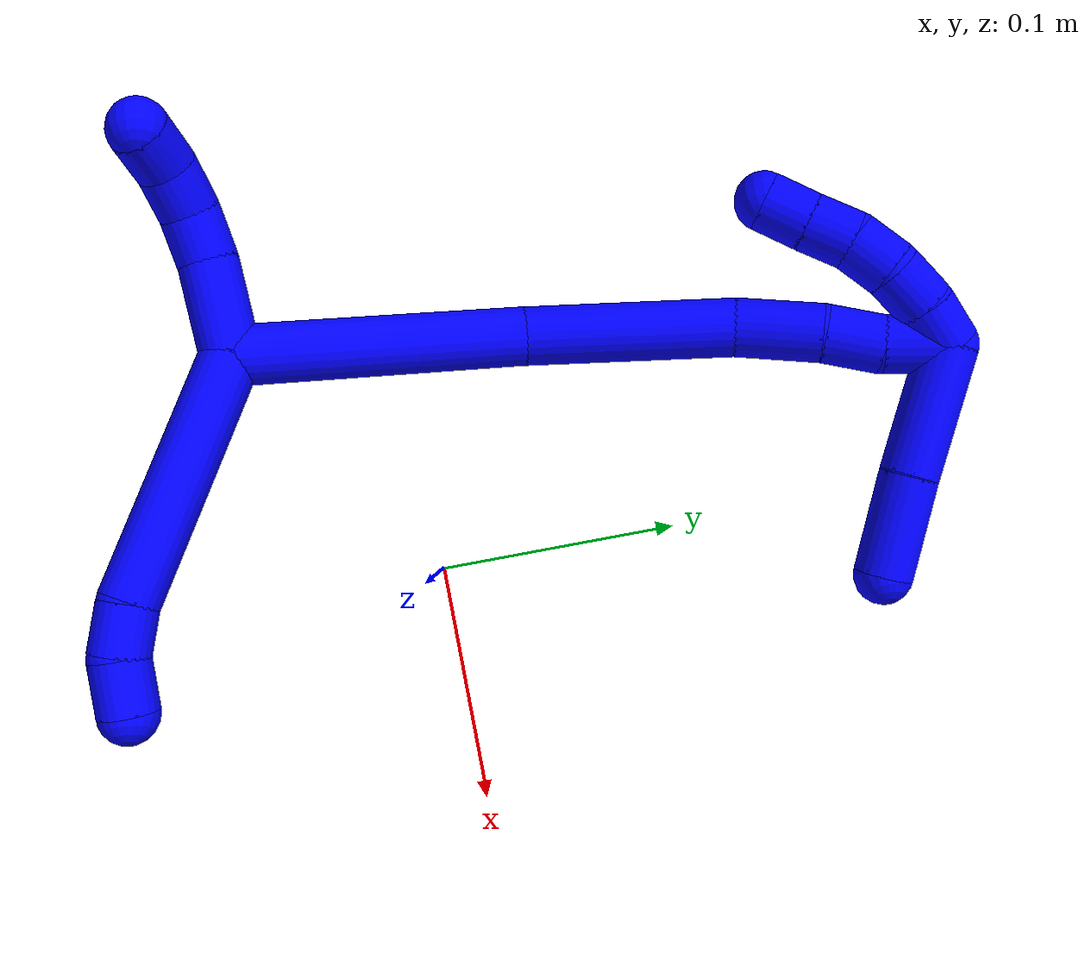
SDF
<sdf version="1.7">
 <world name="default">
  <model name="1">
   <static>0</static>
   <link name="1">
    <collision name="collision-cylinder-e_1_2_8">
     <pose>0.005854 -0.024749 0.046782 0.486591 0.110167 0.027371</pose>
     <geometry><cylinder><radius>0.0125</radius><length>0.106496</length></cylinder></geometry>
     <surface>
      <friction><ode><mu>1.16</mu><mu2>1.16</mu2><slip1>0</slip1><slip2>0</slip2></ode></friction>
      <contact><ode><kp>1e+06</kp><kd>1</kd><max_vel>0</max_vel><min_depth>0.001</min_depth></ode></contact>
     </surface>
    </collision>
    <visual name="visual-cylinder-e_1_2_8">
     <pose>0.005854 -0.024749 0.046782 0.486591 0.110167 0.027371</pose>
     <geometry><cylinder><radius>0.0125</radius><length>0.106496</length></cylinder></geometry>
     <material><ambient>0 0 1 1</ambient></material>
    </visual>
    <collision name="collision-cylinder-e_2_8_9">
     <pose>0.014379 -0.052658 0.103338 0.312809 0.254316 0.040316</pose>
     <geometry><cylinder><radius>0.0125</radius><length>0.021227</length></cylinder></geometry>
     <surface>
      <friction><ode><mu>1.16</mu><mu2>1.16</mu2><slip1>0</slip1><slip2>0</slip2></ode></friction>
      <contact><ode><kp>1e+06</kp><kd>1</kd><max_vel>0</max_vel><min_depth>0.001</min_depth></ode></contact>
     </surface>
    </collision>
    <visual name="visual-cylinder-e_2_8_9">
     <pose>0.014379 -0.052658 0.103338 0.312809 0.254316 0.040316</pose>
     <geometry><cylinder><radius>0.0125</radius><length>0.021227</length></cylinder></geometry>
     <material><ambient>0 0 1 1</ambient></material>
    </visual>
    <collision name="collision-cylinder-e_3_9_6">
     <pose>0.021757 -0.055951 0.123206 0.013086 0.436407 0.002902</pose>
     <geometry><cylinder><radius>0.0125</radius><length>0.022277</length></cylinder></geometry>
     <surface>
      <friction><ode><mu>1.16</mu><mu2>1.16</mu2><slip1>0</slip1><slip2>0</slip2></ode></friction>
      <contact><ode><kp>1e+06</kp><kd>1</kd><max_vel>0</max_vel><min_depth>0.001</min_depth></ode></contact>
     </surface>
    </collision>
    <visual name="visual-cylinder-e_3_9_6">
     <pose>0.021757 -0.055951 0.123206 0.013086 0.436407 0.002902</pose>
     <geometry><cylinder><radius>0.0125</radius><length>0.022277</length></cylinder></geometry>
     <material><ambient>0 0 1 1</ambient></material>
    </visual>
    <collision name="collision-cylinder-e_1_2_10">
     <pose>-0.007112 -0.001435 -0.018073 3.06234 -0.373864 -2.72834</pose>
     <geometry><cylinder><radius>0.0125</radius><length>0.03895</length></cylinder></geometry>
     <surface>
      <friction><ode><mu>1.16</mu><mu2>1.16</mu2><slip1>0</slip1><slip2>0</slip2></ode></friction>
      <contact><ode><kp>1e+06</kp><kd>1</kd><max_vel>0</max_vel><min_depth>0.001</min_depth></ode></contact>
     </surface>
    </collision>
    <visual name="visual-cylinder-e_1_2_10">
     <pose>-0.007112 -0.001435 -0.018073 3.06234 -0.373864 -2.72834</pose>
     <geometry><cylinder><radius>0.0125</radius><length>0.03895</length></cylinder></geometry>
     <material><ambient>0 0 1 1</ambient></material>
    </visual>
    <collision name="collision-cylinder-e_2_10_11">
     <pose>-0.020234 -0.004262 -0.044583 2.97813 -0.612555 -2.63468</pose>
     <geometry><cylinder><radius>0.0125</radius><length>0.020904</length></cylinder></geometry>
     <surface>
      <friction><ode><mu>1.16</mu><mu2>1.16</mu2><slip1>0</slip1><slip2>0</slip2></ode></friction>
      <contact><ode><kp>1e+06</kp><kd>1</kd><max_vel>0</max_vel><min_depth>0.001</min_depth></ode></contact>
     </surface>
    </collision>
    <visual name="visual-cylinder-e_2_10_11">
     <pose>-0.020234 -0.004262 -0.044583 2.97813 -0.612555 -2.63468</pose>
     <geometry><cylinder><radius>0.0125</radius><length>0.020904</length></cylinder></geometry>
     <material><ambient>0 0 1 1</ambient></material>
    </visual>
    <collision name="collision-cylinder-e_3_11_12">
     <pose>-0.03444 -0.007175 -0.058647 2.87759 -0.952686 -2.63786</pose>
     <geometry><cylinder><radius>0.0125</radius><length>0.020115</length></cylinder></geometry>
     <surface>
      <friction><ode><mu>1.16</mu><mu2>1.16</mu2><slip1>0</slip1><slip2>0</slip2></ode></friction>
      <contact><ode><kp>1e+06</kp><kd>1</kd><max_vel>0</max_vel><min_depth>0.001</min_depth></ode></contact>
     </surface>
    </collision>
    <visual name="visual-cylinder-e_3_11_12">
     <pose>-0.03444 -0.007175 -0.058647 2.87759 -0.952686 -2.63786</pose>
     <geometry><cylinder><radius>0.0125</radius><length>0.020115</length></cylinder></geometry>
     <material><ambient>0 0 1 1</ambient></material>
    </visual>
    <collision name="collision-cylinder-e_4_12_5">
     <pose>-0.05216 -0.010342 -0.066902 2.58211 -1.25591 -2.388</pose>
     <geometry><cylinder><radius>0.0125</radius><length>0.020031</length></cylinder></geometry>
     <surface>
      <friction><ode><mu>1.16</mu><mu2>1.16</mu2><slip1>0</slip1><slip2>0</slip2></ode></friction>
      <contact><ode><kp>1e+06</kp><kd>1</kd><max_vel>0</max_vel><min_depth>0.001</min_depth></ode></contact>
     </surface>
    </collision>
    <visual name="visual-cylinder-e_4_12_5">
     <pose>-0.05216 -0.010342 -0.066902 2.58211 -1.25591 -2.388</pose>
     <geometry><cylinder><radius>0.0125</radius><length>0.020031</length></cylinder></geometry>
     <material><ambient>0 0 1 1</ambient></material>
    </visual>
    <collision name="collision-cylinder-e_1_2_13">
     <pose>0.019907 0.057557 -0.003417 -1.6301 0.332443 -0.352361</pose>
     <geometry><cylinder><radius>0.0125</radius><length>0.121997</length></cylinder></geometry>
     <surface>
      <friction><ode><mu>1.16</mu><mu2>1.16</mu2><slip1>0</slip1><slip2>0</slip2></ode></friction>
      <contact><ode><kp>1e+06</kp><kd>1</kd><max_vel>0</max_vel><min_depth>0.001</min_depth></ode></contact>
     </surface>
    </collision>
    <visual name="visual-cylinder-e_1_2_13">
     <pose>0.019907 0.057557 -0.003417 -1.6301 0.332443 -0.352361</pose>
     <geometry><cylinder><radius>0.0125</radius><length>0.121997</length></cylinder></geometry>
     <material><ambient>0 0 1 1</ambient></material>
    </visual>
    <collision name="collision-cylinder-e_2_13_14">
     <pose>0.045218 0.159178 -0.003071 -1.48558 0.121594 -0.111672</pose>
     <geometry><cylinder><radius>0.0125</radius><length>0.089106</length></cylinder></geometry>
     <surface>
      <friction><ode><mu>1.16</mu><mu2>1.16</mu2><slip1>0</slip1><slip2>0</slip2></ode></friction>
      <contact><ode><kp>1e+06</kp><kd>1</kd><max_vel>0</max_vel><min_depth>0.001</min_depth></ode></contact>
     </surface>
    </collision>
    <visual name="visual-cylinder-e_2_13_14">
     <pose>0.045218 0.159178 -0.003071 -1.48558 0.121594 -0.111672</pose>
     <geometry><cylinder><radius>0.0125</radius><length>0.089106</length></cylinder></geometry>
     <material><ambient>0 0 1 1</ambient></material>
    </visual>
    <collision name="collision-cylinder-e_3_14_15">
     <pose>0.050797 0.221143 0.005558 -1.30544 0.009414 -0.007197</pose>
     <geometry><cylinder><radius>0.0125</radius><length>0.037103</length></cylinder></geometry>
     <surface>
      <friction><ode><mu>1.16</mu><mu2>1.16</mu2><slip1>0</slip1><slip2>0</slip2></ode></friction>
      <contact><ode><kp>1e+06</kp><kd>1</kd><max_vel>0</max_vel><min_depth>0.001</min_depth></ode></contact>
     </surface>
    </collision>
    <visual name="visual-cylinder-e_3_14_15">
     <pose>0.050797 0.221143 0.005558 -1.30544 0.009414 -0.007197</pose>
     <geometry><cylinder><radius>0.0125</radius><length>0.037103</length></cylinder></geometry>
     <material><ambient>0 0 1 1</ambient></material>
    </visual>
    <collision name="collision-cylinder-e_4_15_16">
     <pose>0.052923 0.250616 0.014338 -1.24454 0.158417 -0.113754</pose>
     <geometry><cylinder><radius>0.0125</radius><length>0.024742</length></cylinder></geometry>
     <surface>
      <friction><ode><mu>1.16</mu><mu2>1.16</mu2><slip1>0</slip1><slip2>0</slip2></ode></friction>
      <contact><ode><kp>1e+06</kp><kd>1</kd><max_vel>0</max_vel><min_depth>0.001</min_depth></ode></contact>
     </surface>
    </collision>
    <visual name="visual-cylinder-e_4_15_16">
     <pose>0.052923 0.250616 0.014338 -1.24454 0.158417 -0.113754</pose>
     <geometry><cylinder><radius>0.0125</radius><length>0.024742</length></cylinder></geometry>
     <material><ambient>0 0 1 1</ambient></material>
    </visual>
    <collision name="collision-cylinder-e_5_16_1">
     <pose>0.055643 0.275503 0.020504 -1.40334 0.056801 -0.048008</pose>
     <geometry><cylinder><radius>0.0125</radius><length>0.027052</length></cylinder></geometry>
     <surface>
      <friction><ode><mu>1.16</mu><mu2>1.16</mu2><slip1>0</slip1><slip2>0</slip2></ode></friction>
      <contact><ode><kp>1e+06</kp><kd>1</kd><max_vel>0</max_vel><min_depth>0.001</min_depth></ode></contact>
     </surface>
    </collision>
    <visual name="visual-cylinder-e_5_16_1">
     <pose>0.055643 0.275503 0.020504 -1.40334 0.056801 -0.048008</pose>
     <geometry><cylinder><radius>0.0125</radius><length>0.027052</length></cylinder></geometry>
     <material><ambient>0 0 1 1</ambient></material>
    </visual>
    <collision name="collision-cylinder-e_1_1_17">
     <pose>0.066678 0.276629 0.046121 0.480833 0.371485 0.09207</pose>
     <geometry><cylinder><radius>0.0125</radius><length>0.056568</length></cylinder></geometry>
     <surface>
      <friction><ode><mu>1.16</mu><mu2>1.16</mu2><slip1>0</slip1><slip2>0</slip2></ode></friction>
      <contact><ode><kp>1e+06</kp><kd>1</kd><max_vel>0</max_vel><min_depth>0.001</min_depth></ode></contact>
     </surface>
    </collision>
    <visual name="visual-cylinder-e_1_1_17">
     <pose>0.066678 0.276629 0.046121 0.480833 0.371485 0.09207</pose>
     <geometry><cylinder><radius>0.0125</radius><length>0.056568</length></cylinder></geometry>
     <material><ambient>0 0 1 1</ambient></material>
    </visual>
    <collision name="collision-cylinder-e_2_17_4">
     <pose>0.085907 0.255994 0.087375 0.441129 0.425408 0.096771</pose>
     <geometry><cylinder><radius>0.0125</radius><length>0.043432</length></cylinder></geometry>
     <surface>
      <friction><ode><mu>1.16</mu><mu2>1.16</mu2><slip1>0</slip1><slip2>0</slip2></ode></friction>
      <contact><ode><kp>1e+06</kp><kd>1</kd><max_vel>0</max_vel><min_depth>0.001</min_depth></ode></contact>
     </surface>
    </collision>
    <visual name="visual-cylinder-e_2_17_4">
     <pose>0.085907 0.255994 0.087375 0.441129 0.425408 0.096771</pose>
     <geometry><cylinder><radius>0.0125</radius><length>0.043432</length></cylinder></geometry>
     <material><ambient>0 0 1 1</ambient></material>
    </visual>
    <collision name="collision-cylinder-e_1_1_18">
     <pose>0.050644 0.284771 0.015658 2.62336 -0.614612 -1.74984</pose>
     <geometry><cylinder><radius>0.0125</radius><length>0.02</length></cylinder></geometry>
     <surface>
      <friction><ode><mu>1.16</mu><mu2>1.16</mu2><slip1>0</slip1><slip2>0</slip2></ode></friction>
      <contact><ode><kp>1e+06</kp><kd>1</kd><max_vel>0</max_vel><min_depth>0.001</min_depth></ode></contact>
     </surface>
    </collision>
    <visual name="visual-cylinder-e_1_1_18">
     <pose>0.050644 0.284771 0.015658 2.62336 -0.614612 -1.74984</pose>
     <geometry><cylinder><radius>0.0125</radius><length>0.02</length></cylinder></geometry>
     <material><ambient>0 0 1 1</ambient></material>
    </visual>
    <collision name="collision-cylinder-e_2_18_19">
     <pose>0.039955 0.27512 0.001901 2.4421 -0.514738 -1.25019</pose>
     <geometry><cylinder><radius>0.0125</radius><length>0.02</length></cylinder></geometry>
     <surface>
      <friction><ode><mu>1.16</mu><mu2>1.16</mu2><slip1>0</slip1><slip2>0</slip2></ode></friction>
      <contact><ode><kp>1e+06</kp><kd>1</kd><max_vel>0</max_vel><min_depth>0.001</min_depth></ode></contact>
     </surface>
    </collision>
    <visual name="visual-cylinder-e_2_18_19">
     <pose>0.039955 0.27512 0.001901 2.4421 -0.514738 -1.25019</pose>
     <geometry><cylinder><radius>0.0125</radius><length>0.02</length></cylinder></geometry>
     <material><ambient>0 0 1 1</ambient></material>
    </visual>
    <collision name="collision-cylinder-e_3_19_20">
     <pose>0.032509 0.26271 -0.011637 2.36138 -0.255002 -0.604455</pose>
     <geometry><cylinder><radius>0.0125</radius><length>0.02</length></cylinder></geometry>
     <surface>
      <friction><ode><mu>1.16</mu><mu2>1.16</mu2><slip1>0</slip1><slip2>0</slip2></ode></friction>
      <contact><ode><kp>1e+06</kp><kd>1</kd><max_vel>0</max_vel><min_depth>0.001</min_depth></ode></contact>
     </surface>
    </collision>
    <visual name="visual-cylinder-e_3_19_20">
     <pose>0.032509 0.26271 -0.011637 2.36138 -0.255002 -0.604455</pose>
     <geometry><cylinder><radius>0.0125</radius><length>0.02</length></cylinder></geometry>
     <material><ambient>0 0 1 1</ambient></material>
    </visual>
    <collision name="collision-cylinder-e_4_20_21">
     <pose>0.028012 0.247563 -0.023668 2.12422 -0.19872 -0.3538</pose>
     <geometry><cylinder><radius>0.0125</radius><length>0.02</length></cylinder></geometry>
     <surface>
      <friction><ode><mu>1.16</mu><mu2>1.16</mu2><slip1>0</slip1><slip2>0</slip2></ode></friction>
      <contact><ode><kp>1e+06</kp><kd>1</kd><max_vel>0</max_vel><min_depth>0.001</min_depth></ode></contact>
     </surface>
    </collision>
    <visual name="visual-cylinder-e_4_20_21">
     <pose>0.028012 0.247563 -0.023668 2.12422 -0.19872 -0.3538</pose>
     <geometry><cylinder><radius>0.0125</radius><length>0.02</length></cylinder></geometry>
     <material><ambient>0 0 1 1</ambient></material>
    </visual>
    <collision name="collision-cylinder-e_5_21_3">
     <pose>0.023746 0.23108 -0.034152 2.15051 -0.231322 -0.423432</pose>
     <geometry><cylinder><radius>0.0125</radius><length>0.02</length></cylinder></geometry>
     <surface>
      <friction><ode><mu>1.16</mu><mu2>1.16</mu2><slip1>0</slip1><slip2>0</slip2></ode></friction>
      <contact><ode><kp>1e+06</kp><kd>1</kd><max_vel>0</max_vel><min_depth>0.001</min_depth></ode></contact>
     </surface>
    </collision>
    <visual name="visual-cylinder-e_5_21_3">
     <pose>0.023746 0.23108 -0.034152 2.15051 -0.231322 -0.423432</pose>
     <geometry><cylinder><radius>0.0125</radius><length>0.02</length></cylinder></geometry>
     <material><ambient>0 0 1 1</ambient></material>
    </visual>
    <collision name="collision-sphere-3">
     <pose>0.021453 0.222936 -0.039484 0 -0 0</pose>
     <geometry><sphere><radius>0.0125</radius></sphere></geometry>
     <surface>
      <friction><ode><mu>1.16</mu><mu2>1.16</mu2><slip1>0</slip1><slip2>0</slip2></ode></friction>
      <contact><ode><kp>1e+06</kp><kd>1</kd><max_vel>0</max_vel><min_depth>0.001</min_depth></ode></contact>
     </surface>
    </collision>
    <visual name="visual-sphere-3">
     <pose>0.021453 0.222936 -0.039484 0 -0 0</pose>
     <geometry><sphere><radius>0.0125</radius></sphere></geometry>
     <material><ambient>0 0 1 1</ambient></material>
    </visual>
    <collision name="collision-sphere-21">
     <pose>0.026038 0.239223 -0.02882 0 -0 0</pose>
     <geometry><sphere><radius>0.0125</radius></sphere></geometry>
     <surface>
      <friction><ode><mu>1.16</mu><mu2>1.16</mu2><slip1>0</slip1><slip2>0</slip2></ode></friction>
      <contact><ode><kp>1e+06</kp><kd>1</kd><max_vel>0</max_vel><min_depth>0.001</min_depth></ode></contact>
     </surface>
    </collision>
    <visual name="visual-sphere-21">
     <pose>0.026038 0.239223 -0.02882 0 -0 0</pose>
     <geometry><sphere><radius>0.0125</radius></sphere></geometry>
     <material><ambient>0 0 1 1</ambient></material>
    </visual>
    <collision name="collision-sphere-20">
     <pose>0.029987 0.255903 -0.018515 0 -0 0</pose>
     <geometry><sphere><radius>0.0125</radius></sphere></geometry>
     <surface>
      <friction><ode><mu>1.16</mu><mu2>1.16</mu2><slip1>0</slip1><slip2>0</slip2></ode></friction>
      <contact><ode><kp>1e+06</kp><kd>1</kd><max_vel>0</max_vel><min_depth>0.001</min_depth></ode></contact>
     </surface>
    </collision>
    <visual name="visual-sphere-20">
     <pose>0.029987 0.255903 -0.018515 0 -0 0</pose>
     <geometry><sphere><radius>0.0125</radius></sphere></geometry>
     <material><ambient>0 0 1 1</ambient></material>
    </visual>
    <collision name="collision-sphere-19">
     <pose>0.035032 0.269516 -0.00476 0 -0 0</pose>
     <geometry><sphere><radius>0.0125</radius></sphere></geometry>
     <surface>
      <friction><ode><mu>1.16</mu><mu2>1.16</mu2><slip1>0</slip1><slip2>0</slip2></ode></friction>
      <contact><ode><kp>1e+06</kp><kd>1</kd><max_vel>0</max_vel><min_depth>0.001</min_depth></ode></contact>
     </surface>
    </collision>
    <visual name="visual-sphere-19">
     <pose>0.035032 0.269516 -0.00476 0 -0 0</pose>
     <geometry><sphere><radius>0.0125</radius></sphere></geometry>
     <material><ambient>0 0 1 1</ambient></material>
    </visual>
    <collision name="collision-sphere-11">
     <pose>-0.026244 -0.005654 -0.05302 0 -0 0</pose>
     <geometry><sphere><radius>0.0125</radius></sphere></geometry>
     <surface>
      <friction><ode><mu>1.16</mu><mu2>1.16</mu2><slip1>0</slip1><slip2>0</slip2></ode></friction>
      <contact><ode><kp>1e+06</kp><kd>1</kd><max_vel>0</max_vel><min_depth>0.001</min_depth></ode></contact>
     </surface>
    </collision>
    <visual name="visual-sphere-11">
     <pose>-0.026244 -0.005654 -0.05302 0 -0 0</pose>
     <geometry><sphere><radius>0.0125</radius></sphere></geometry>
     <material><ambient>0 0 1 1</ambient></material>
    </visual>
    <collision name="collision-sphere-10">
     <pose>-0.014225 -0.002871 -0.036145 0 -0 0</pose>
     <geometry><sphere><radius>0.0125</radius></sphere></geometry>
     <surface>
      <friction><ode><mu>1.16</mu><mu2>1.16</mu2><slip1>0</slip1><slip2>0</slip2></ode></friction>
      <contact><ode><kp>1e+06</kp><kd>1</kd><max_vel>0</max_vel><min_depth>0.001</min_depth></ode></contact>
     </surface>
    </collision>
    <visual name="visual-sphere-10">
     <pose>-0.014225 -0.002871 -0.036145 0 -0 0</pose>
     <geometry><sphere><radius>0.0125</radius></sphere></geometry>
     <material><ambient>0 0 1 1</ambient></material>
    </visual>
    <collision name="collision-sphere-6">
     <pose>0.026465 -0.056084 0.133299 0 -0 0</pose>
     <geometry><sphere><radius>0.0125</radius></sphere></geometry>
     <surface>
      <friction><ode><mu>1.16</mu><mu2>1.16</mu2><slip1>0</slip1><slip2>0</slip2></ode></friction>
      <contact><ode><kp>1e+06</kp><kd>1</kd><max_vel>0</max_vel><min_depth>0.001</min_depth></ode></contact>
     </surface>
    </collision>
    <visual name="visual-sphere-6">
     <pose>0.026465 -0.056084 0.133299 0 -0 0</pose>
     <geometry><sphere><radius>0.0125</radius></sphere></geometry>
     <material><ambient>0 0 1 1</ambient></material>
    </visual>
    <collision name="collision-sphere-9">
     <pose>0.017049 -0.055819 0.113112 0 -0 0</pose>
     <geometry><sphere><radius>0.0125</radius></sphere></geometry>
     <surface>
      <friction><ode><mu>1.16</mu><mu2>1.16</mu2><slip1>0</slip1><slip2>0</slip2></ode></friction>
      <contact><ode><kp>1e+06</kp><kd>1</kd><max_vel>0</max_vel><min_depth>0.001</min_depth></ode></contact>
     </surface>
    </collision>
    <visual name="visual-sphere-9">
     <pose>0.017049 -0.055819 0.113112 0 -0 0</pose>
     <geometry><sphere><radius>0.0125</radius></sphere></geometry>
     <material><ambient>0 0 1 1</ambient></material>
    </visual>
    <collision name="collision-sphere-2">
     <geometry><sphere><radius>0.0125</radius></sphere></geometry>
     <surface>
      <friction><ode><mu>1.16</mu><mu2>1.16</mu2><slip1>0</slip1><slip2>0</slip2></ode></friction>
      <contact><ode><kp>1e+06</kp><kd>1</kd><max_vel>0</max_vel><min_depth>0.001</min_depth></ode></contact>
     </surface>
    </collision>
    <visual name="visual-sphere-2">
     <geometry><sphere><radius>0.0125</radius></sphere></geometry>
     <material><ambient>0 0 1 1</ambient></material>
    </visual>
    <collision name="collision-sphere-8">
     <pose>0.011709 -0.049497 0.093565 0 -0 0</pose>
     <geometry><sphere><radius>0.0125</radius></sphere></geometry>
     <surface>
      <friction><ode><mu>1.16</mu><mu2>1.16</mu2><slip1>0</slip1><slip2>0</slip2></ode></friction>
      <contact><ode><kp>1e+06</kp><kd>1</kd><max_vel>0</max_vel><min_depth>0.001</min_depth></ode></contact>
     </surface>
    </collision>
    <visual name="visual-sphere-8">
     <pose>0.011709 -0.049497 0.093565 0 -0 0</pose>
     <geometry><sphere><radius>0.0125</radius></sphere></geometry>
     <material><ambient>0 0 1 1</ambient></material>
    </visual>
    <collision name="collision-sphere-12">
     <pose>-0.042637 -0.008696 -0.064273 0 -0 0</pose>
     <geometry><sphere><radius>0.0125</radius></sphere></geometry>
     <surface>
      <friction><ode><mu>1.16</mu><mu2>1.16</mu2><slip1>0</slip1><slip2>0</slip2></ode></friction>
      <contact><ode><kp>1e+06</kp><kd>1</kd><max_vel>0</max_vel><min_depth>0.001</min_depth></ode></contact>
     </surface>
    </collision>
    <visual name="visual-sphere-12">
     <pose>-0.042637 -0.008696 -0.064273 0 -0 0</pose>
     <geometry><sphere><radius>0.0125</radius></sphere></geometry>
     <material><ambient>0 0 1 1</ambient></material>
    </visual>
    <collision name="collision-sphere-5">
     <pose>-0.061684 -0.011988 -0.069531 0 -0 0</pose>
     <geometry><sphere><radius>0.0125</radius></sphere></geometry>
     <surface>
      <friction><ode><mu>1.16</mu><mu2>1.16</mu2><slip1>0</slip1><slip2>0</slip2></ode></friction>
      <contact><ode><kp>1e+06</kp><kd>1</kd><max_vel>0</max_vel><min_depth>0.001</min_depth></ode></contact>
     </surface>
    </collision>
    <visual name="visual-sphere-5">
     <pose>-0.061684 -0.011988 -0.069531 0 -0 0</pose>
     <geometry><sphere><radius>0.0125</radius></sphere></geometry>
     <material><ambient>0 0 1 1</ambient></material>
    </visual>
    <collision name="collision-sphere-13">
     <pose>0.039814 0.115115 -0.006835 0 -0 0</pose>
     <geometry><sphere><radius>0.0125</radius></sphere></geometry>
     <surface>
      <friction><ode><mu>1.16</mu><mu2>1.16</mu2><slip1>0</slip1><slip2>0</slip2></ode></friction>
      <contact><ode><kp>1e+06</kp><kd>1</kd><max_vel>0</max_vel><min_depth>0.001</min_depth></ode></contact>
     </surface>
    </collision>
    <visual name="visual-sphere-13">
     <pose>0.039814 0.115115 -0.006835 0 -0 0</pose>
     <geometry><sphere><radius>0.0125</radius></sphere></geometry>
     <material><ambient>0 0 1 1</ambient></material>
    </visual>
    <collision name="collision-sphere-14">
     <pose>0.050622 0.203242 0.000693 0 -0 0</pose>
     <geometry><sphere><radius>0.0125</radius></sphere></geometry>
     <surface>
      <friction><ode><mu>1.16</mu><mu2>1.16</mu2><slip1>0</slip1><slip2>0</slip2></ode></friction>
      <contact><ode><kp>1e+06</kp><kd>1</kd><max_vel>0</max_vel><min_depth>0.001</min_depth></ode></contact>
     </surface>
    </collision>
    <visual name="visual-sphere-14">
     <pose>0.050622 0.203242 0.000693 0 -0 0</pose>
     <geometry><sphere><radius>0.0125</radius></sphere></geometry>
     <material><ambient>0 0 1 1</ambient></material>
    </visual>
    <collision name="collision-sphere-15">
     <pose>0.050972 0.239045 0.010423 0 -0 0</pose>
     <geometry><sphere><radius>0.0125</radius></sphere></geometry>
     <surface>
      <friction><ode><mu>1.16</mu><mu2>1.16</mu2><slip1>0</slip1><slip2>0</slip2></ode></friction>
      <contact><ode><kp>1e+06</kp><kd>1</kd><max_vel>0</max_vel><min_depth>0.001</min_depth></ode></contact>
     </surface>
    </collision>
    <visual name="visual-sphere-15">
     <pose>0.050972 0.239045 0.010423 0 -0 0</pose>
     <geometry><sphere><radius>0.0125</radius></sphere></geometry>
     <material><ambient>0 0 1 1</ambient></material>
    </visual>
    <collision name="collision-sphere-16">
     <pose>0.054875 0.262188 0.018253 0 -0 0</pose>
     <geometry><sphere><radius>0.0125</radius></sphere></geometry>
     <surface>
      <friction><ode><mu>1.16</mu><mu2>1.16</mu2><slip1>0</slip1><slip2>0</slip2></ode></friction>
      <contact><ode><kp>1e+06</kp><kd>1</kd><max_vel>0</max_vel><min_depth>0.001</min_depth></ode></contact>
     </surface>
    </collision>
    <visual name="visual-sphere-16">
     <pose>0.054875 0.262188 0.018253 0 -0 0</pose>
     <geometry><sphere><radius>0.0125</radius></sphere></geometry>
     <material><ambient>0 0 1 1</ambient></material>
    </visual>
    <collision name="collision-sphere-1">
     <pose>0.05641 0.288818 0.022755 0 -0 0</pose>
     <geometry><sphere><radius>0.0125</radius></sphere></geometry>
     <surface>
      <friction><ode><mu>1.16</mu><mu2>1.16</mu2><slip1>0</slip1><slip2>0</slip2></ode></friction>
      <contact><ode><kp>1e+06</kp><kd>1</kd><max_vel>0</max_vel><min_depth>0.001</min_depth></ode></contact>
     </surface>
    </collision>
    <visual name="visual-sphere-1">
     <pose>0.05641 0.288818 0.022755 0 -0 0</pose>
     <geometry><sphere><radius>0.0125</radius></sphere></geometry>
     <material><ambient>0 0 1 1</ambient></material>
    </visual>
    <collision name="collision-sphere-18">
     <pose>0.044878 0.280724 0.008561 0 -0 0</pose>
     <geometry><sphere><radius>0.0125</radius></sphere></geometry>
     <surface>
      <friction><ode><mu>1.16</mu><mu2>1.16</mu2><slip1>0</slip1><slip2>0</slip2></ode></friction>
      <contact><ode><kp>1e+06</kp><kd>1</kd><max_vel>0</max_vel><min_depth>0.001</min_depth></ode></contact>
     </surface>
    </collision>
    <visual name="visual-sphere-18">
     <pose>0.044878 0.280724 0.008561 0 -0 0</pose>
     <geometry><sphere><radius>0.0125</radius></sphere></geometry>
     <material><ambient>0 0 1 1</ambient></material>
    </visual>
    <collision name="collision-sphere-17">
     <pose>0.076945 0.26444 0.069488 0 -0 0</pose>
     <geometry><sphere><radius>0.0125</radius></sphere></geometry>
     <surface>
      <friction><ode><mu>1.16</mu><mu2>1.16</mu2><slip1>0</slip1><slip2>0</slip2></ode></friction>
      <contact><ode><kp>1e+06</kp><kd>1</kd><max_vel>0</max_vel><min_depth>0.001</min_depth></ode></contact>
     </surface>
    </collision>
    <visual name="visual-sphere-17">
     <pose>0.076945 0.26444 0.069488 0 -0 0</pose>
     <geometry><sphere><radius>0.0125</radius></sphere></geometry>
     <material><ambient>0 0 1 1</ambient></material>
    </visual>
    <collision name="collision-sphere-4">
     <pose>0.094869 0.247548 0.105262 0 -0 0</pose>
     <geometry><sphere><radius>0.0125</radius></sphere></geometry>
     <surface>
      <friction><ode><mu>1.16</mu><mu2>1.16</mu2><slip1>0</slip1><slip2>0</slip2></ode></friction>
      <contact><ode><kp>1e+06</kp><kd>1</kd><max_vel>0</max_vel><min_depth>0.001</min_depth></ode></contact>
     </surface>
    </collision>
    <visual name="visual-sphere-4">
     <pose>0.094869 0.247548 0.105262 0 -0 0</pose>
     <geometry><sphere><radius>0.0125</radius></sphere></geometry>
     <material><ambient>0 0 1 1</ambient></material>
    </visual>
    <inertial>
     <pose>0.028178 0.120479 0.015407 0 -0 0</pose>
     <mass>0.75</mass>
     <inertia>
      <ixx>0.000279</ixx>
      <ixy>0</ixy>
      <ixz>0</ixz>
      <iyy>9.4e-05</iyy>
      <iyz>0</iyz>
      <izz>-0.000218</izz>
     </inertia>
    </inertial>
   </link>
   <pose>-0.101895 -0.065751 0.040573 0.233868 1.17744 0.197207</pose>
  </model>
 </world>
</sdf>
